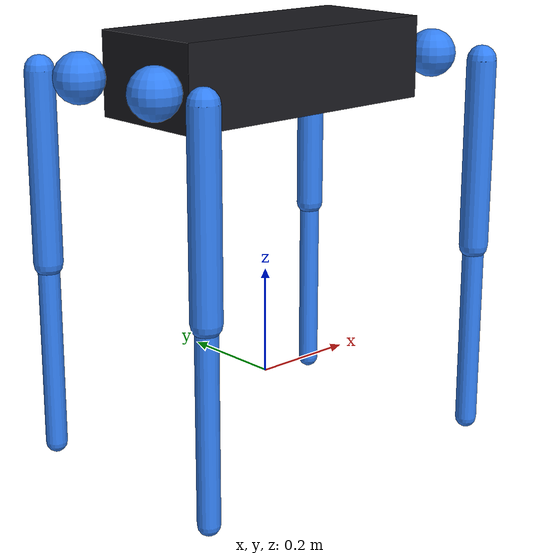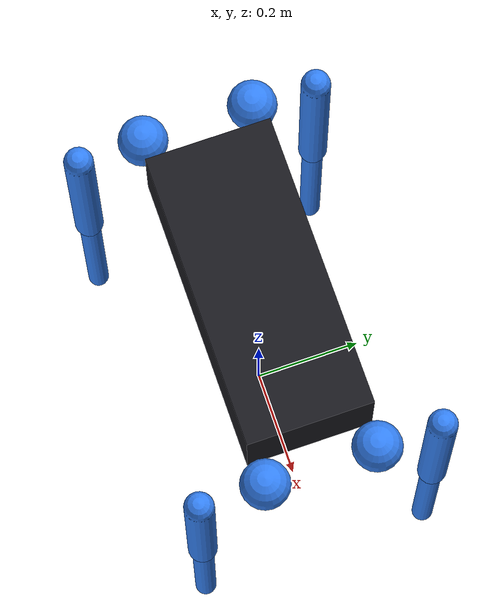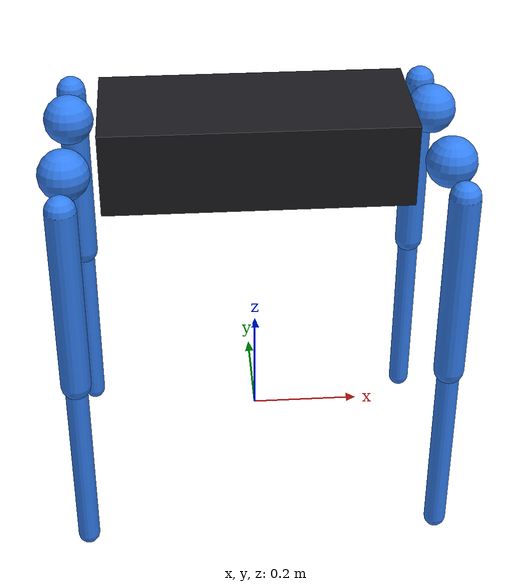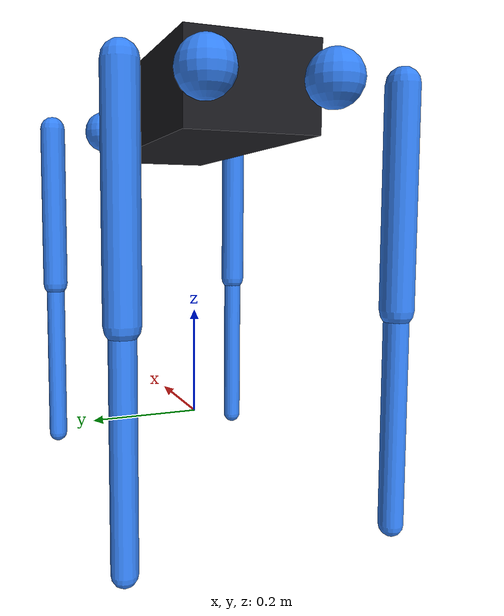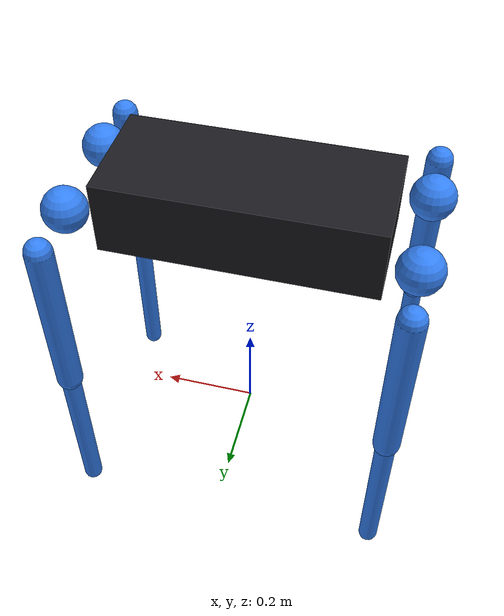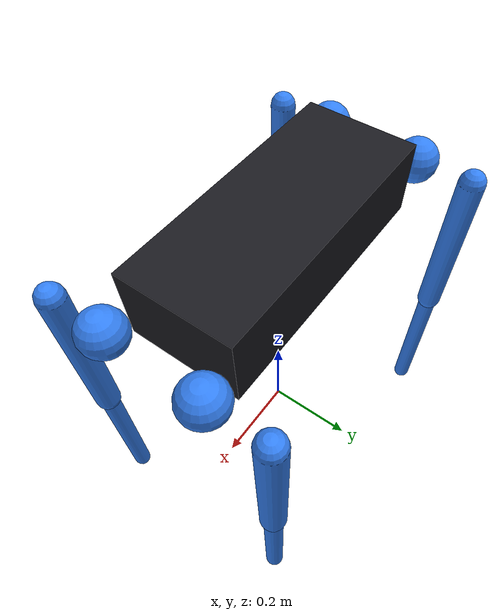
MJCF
<mujoco model="b2_retarget">
  <compiler angle="radian" autolimits="true"/>
  <option timestep="0.02" gravity="0 0 -9.81"/>

  <default>
    <joint damping="0" armature="0"/>
    <geom contype="0" conaffinity="0" density="100"/>
    <site size="0.014" rgba="0.1 0.4 0.95 1"/>
  </default>

  <worldbody>
    <body name="base" pos="0 0 0.58">
      <freejoint name="root"/>
      <geom name="base_visual" type="box" size="0.27 0.115 0.075" rgba="0.1 0.1 0.12 1"/>
      <site name="base_site" pos="0 0 0"/>

      <body name="FR_hip" pos="0.3285 -0.102 0">
        <joint name="FR_hip_joint" type="hinge" axis="1 0 0" range="-0.87 0.87"/>
        <geom type="sphere" size="0.045" rgba="0.2 0.5 0.95 1"/>
        <site name="FR_hip_site" pos="0 0 0"/>
        <body name="FR_thigh" pos="0 -0.11973 0">
          <joint name="FR_thigh_joint" type="hinge" axis="0 1 0" range="-0.94 4.69"/>
          <geom type="capsule" fromto="0 0 0 0 0 -0.35" size="0.027" rgba="0.2 0.5 0.95 1"/>
          <site name="FR_thigh_site" pos="0 0 0"/>
          <body name="FR_calf" pos="0 0 -0.35">
            <joint name="FR_calf_joint" type="hinge" axis="0 1 0" range="-2.82 -0.84"/>
            <geom type="capsule" fromto="0 0 0 0 0 -0.35" size="0.020" rgba="0.2 0.5 0.95 1"/>
            <site name="FR_calf_site" pos="0 0 0"/>
            <site name="FR_foot_site" pos="0 0 -0.35"/>
          </body>
        </body>
      </body>

      <body name="FL_hip" pos="0.3285 0.102 0">
        <joint name="FL_hip_joint" type="hinge" axis="1 0 0" range="-0.87 0.87"/>
        <geom type="sphere" size="0.045" rgba="0.2 0.5 0.95 1"/>
        <site name="FL_hip_site" pos="0 0 0"/>
        <body name="FL_thigh" pos="0 0.11973 0">
          <joint name="FL_thigh_joint" type="hinge" axis="0 1 0" range="-0.94 4.69"/>
          <geom type="capsule" fromto="0 0 0 0 0 -0.35" size="0.027" rgba="0.2 0.5 0.95 1"/>
          <site name="FL_thigh_site" pos="0 0 0"/>
          <body name="FL_calf" pos="0 0 -0.35">
            <joint name="FL_calf_joint" type="hinge" axis="0 1 0" range="-2.82 -0.84"/>
            <geom type="capsule" fromto="0 0 0 0 0 -0.35" size="0.020" rgba="0.2 0.5 0.95 1"/>
            <site name="FL_calf_site" pos="0 0 0"/>
            <site name="FL_foot_site" pos="0 0 -0.35"/>
          </body>
        </body>
      </body>

      <body name="RR_hip" pos="-0.3285 -0.102 0">
        <joint name="RR_hip_joint" type="hinge" axis="1 0 0" range="-0.87 0.87"/>
        <geom type="sphere" size="0.045" rgba="0.2 0.5 0.95 1"/>
        <site name="RR_hip_site" pos="0 0 0"/>
        <body name="RR_thigh" pos="0 -0.11973 0">
          <joint name="RR_thigh_joint" type="hinge" axis="0 1 0" range="-0.94 4.69"/>
          <geom type="capsule" fromto="0 0 0 0 0 -0.35" size="0.027" rgba="0.2 0.5 0.95 1"/>
          <site name="RR_thigh_site" pos="0 0 0"/>
          <body name="RR_calf" pos="0 0 -0.35">
            <joint name="RR_calf_joint" type="hinge" axis="0 1 0" range="-2.82 -0.84"/>
            <geom type="capsule" fromto="0 0 0 0 0 -0.35" size="0.020" rgba="0.2 0.5 0.95 1"/>
            <site name="RR_calf_site" pos="0 0 0"/>
            <site name="RR_foot_site" pos="0 0 -0.35"/>
          </body>
        </body>
      </body>

      <body name="RL_hip" pos="-0.3285 0.102 0">
        <joint name="RL_hip_joint" type="hinge" axis="1 0 0" range="-0.87 0.87"/>
        <geom type="sphere" size="0.045" rgba="0.2 0.5 0.95 1"/>
        <site name="RL_hip_site" pos="0 0 0"/>
        <body name="RL_thigh" pos="0 0.11973 0">
          <joint name="RL_thigh_joint" type="hinge" axis="0 1 0" range="-0.94 4.69"/>
          <geom type="capsule" fromto="0 0 0 0 0 -0.35" size="0.027" rgba="0.2 0.5 0.95 1"/>
          <site name="RL_thigh_site" pos="0 0 0"/>
          <body name="RL_calf" pos="0 0 -0.35">
            <joint name="RL_calf_joint" type="hinge" axis="0 1 0" range="-2.82 -0.84"/>
            <geom type="capsule" fromto="0 0 0 0 0 -0.35" size="0.020" rgba="0.2 0.5 0.95 1"/>
            <site name="RL_calf_site" pos="0 0 0"/>
            <site name="RL_foot_site" pos="0 0 -0.35"/>
          </body>
        </body>
      </body>
    </body>
  </worldbody>
</mujoco>
